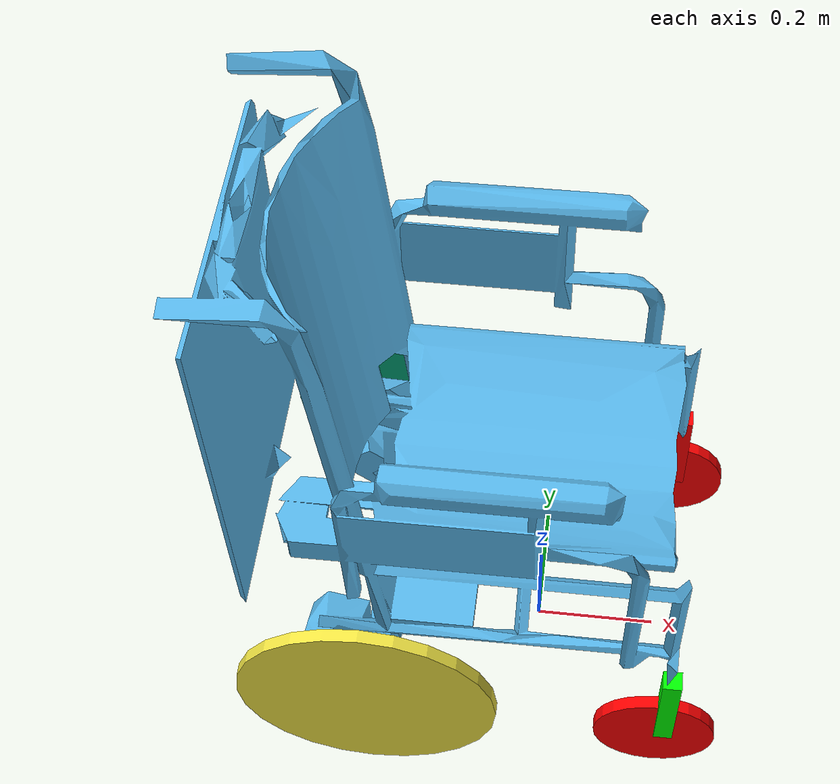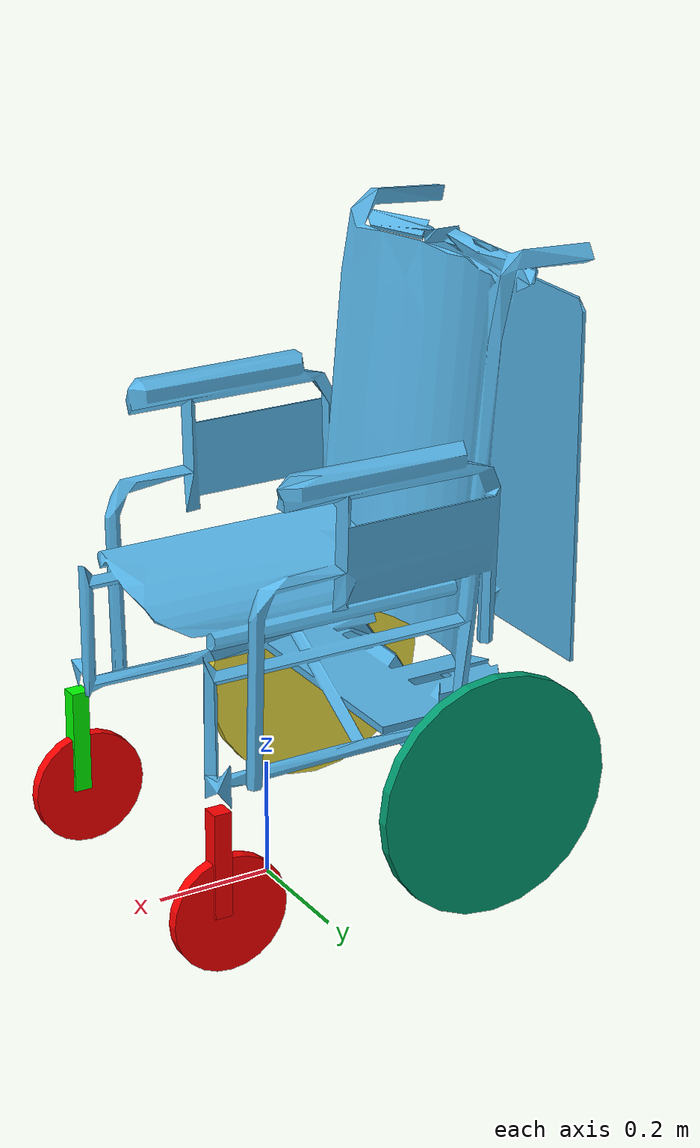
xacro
<?xml version="1.0"?>
<!--
	This is a differential drive robot badly
        modelled after the wheelchair

	Version 1.2a.
	-->

<robot name="$(arg name)" xmlns:xacro="http://www.ros.org/wiki/xacro">

  <!-- Define the robot -->
  <xacro:arg name="camera_tilt" default="0.0" />
  <xacro:property name="camera_tilt" value="$(arg camera_tilt)" />
  <xacro:arg name="show_video" default="true" />
  <xacro:property name="show_video" value="$(arg show_video)" />
  <xacro:arg name="robot_name" default="chair" />
  <xacro:property name="robot_name" value="$(arg name)" />
  <xacro:property name="robot_base_width" value="0.556" />
  <xacro:property name="robot_base_length" value="0.504" />
  <xacro:property name="robot_base_height" value="0.762" />
  <xacro:property name="robot_base_mass" value="4.5" />
  <xacro:property name="robot_wheel_zoffset" value="-0.457" />
  <xacro:property name="robot_wheel_xoffset" value="-0.252" />
  <xacro:property name="robot_wheel_radius" value="0.206" />
  <xacro:property name="robot_wheel_width" value="0.02" />
  <xacro:property name="robot_caster_link_height" value="0.179" />
  <xacro:property name="robot_caster_link_width" value="0.03" />
  <xacro:property name="robot_caster_link_length" value="0.03" />
  <xacro:property name="robot_caster_link_offset" value="-0.025" />
  <xacro:property name="robot_caster_joint_offset" value="${robot_base_length/2}" />
  <xacro:property name="robot_caster_wheel_radius" value="0.098" />
  <xacro:property name="robot_caster_wheel_width" value="0.02" />

  <!-- Import colors defined externally -->
  <xacro:include filename="$(find cpmr_ch11)/colors.xacro" />

  <!-- Define macros to make moments of inertia easier -->
  <xacro:macro name="I_cylinder" params="m r h">
    <inertial>
      <mass value="${m}" />
      <inertia  ixx="${m*(3*r*r+h*h)/12}" iyy="${m*(3*r*r+h*h)/12}" izz="${m*r*r/2}"
              ixy = "0" ixz = "0" iyz = "0" />
    </inertial>
  </xacro:macro>
  <xacro:macro name="I_cuboid" params="m x y z">
    <inertial>
      <mass value="${m}" />
      <inertia  ixx="${m*(y*y+z*z)/12}" iyy="${m*(x*x+z*z)/12}" izz="${m*(x*x+z*z)/12}"
                ixy = "0" ixz = "0" iyz = "0" />
    </inertial>
  </xacro:macro>

  <!-- robot footprint -->
  <link name="base_footprint">
  </link>

  <!-- Base -->
  <link name="base_link">
    <visual>
      <origin rpy="1.57 0 -1.57" xyz="-0.3 0.0 0.4" />
      <geometry>
        <mesh filename="$(find cpmr_ch11)/emptychair.obj" scale="0.001 0.001 0.001"/>
      </geometry>
    </visual>
    <collision>
      <geometry>
        <box size="${robot_base_length} ${robot_base_width} ${robot_base_height}" />
      </geometry>
    </collision>
    <xacro:I_cuboid m="8.4" x="${robot_base_length}" y="${robot_base_width}" z="${robot_base_height}" />
  </link>

  <joint name="base_joint" type="fixed">
    <origin xyz="0.0 0.0 ${robot_wheel_radius-robot_wheel_zoffset}" rpy="0.0 0.0 0.0" />
    <parent link="base_footprint" />
    <child link="base_link" />
    <axis xyz="0 0 1" />
  </joint>

  <!-- Left wheel -->
  <link name="left_wheel">
    <visual>
      <!-- origin rpy="0 1.5708 0" xyz="0 0 0" -->
      <geometry>
        <cylinder length="${robot_wheel_width}" radius="${robot_wheel_radius}" />
      </geometry>
    </visual>
    <collision>
      <geometry>
        <cylinder length="${robot_wheel_width}" radius="${robot_wheel_radius}" />
      </geometry>
    </collision>
    <xacro:I_cylinder m="0.1" r="${robot_wheel_radius}" h="${robot_wheel_width}" />
  </link>

  <joint name="left_wheel_joint" type="continuous">
    <axis xyz="0 0 1" />
    <parent link="base_link" />
    <child link="left_wheel" />
    <origin rpy="-1.5708 0 0" xyz="${robot_wheel_xoffset} ${robot_base_width/2+robot_wheel_width/2} ${robot_wheel_zoffset}" />
  </joint>

  <!-- Right wheel -->
  <link name="right_wheel">
    <visual>
      <!-- origin rpy="0 1.5708 0" xyz="0 0 0" -->
      <geometry>
        <cylinder length="${robot_wheel_width}" radius="${robot_wheel_radius}" />
      </geometry>
    </visual>
    <collision>
      <geometry>
        <cylinder length="${robot_wheel_width}" radius="${robot_wheel_radius}" />
      </geometry>
    </collision>
    <xacro:I_cylinder m="0.1" r="${robot_wheel_radius}" h="${robot_wheel_width}" />
  </link>

  <joint name="right_wheel_joint" type="continuous">
    <axis xyz="0 0 1" />
    <parent link="base_link" />
    <child link="right_wheel" />
    <origin rpy="-1.5708 0 0" xyz="${robot_wheel_xoffset} ${-robot_base_width/2-robot_wheel_width/2} ${robot_wheel_zoffset}" />
  </joint>

  <!-- Caster 'wheel' structure -->
  <gazebo reference="left_caster_link">
    <material>Gazebo/Red</material>
  </gazebo>

  <link name="left_caster_link">
    <visual>
      <origin xyz="${robot_caster_link_length/2} 0 0" rpy="0 0 0" />
      <geometry>
        <box size="${robot_caster_link_length} ${robot_caster_link_width} ${robot_caster_link_height}" />
      </geometry>
      <material name="red"/>
    </visual>
    <collision>
      <origin xyz="${robot_caster_link_length/2} 0 0" rpy="0 0 0" />
      <geometry>
        <box size="${robot_caster_link_length} ${robot_caster_link_width} ${robot_caster_link_height}" />
      </geometry>
    </collision>
    <xacro:I_cuboid m="0.1" x="${robot_caster_link_length}" y="${robot_caster_link_width}" z="${robot_caster_link_height}" />
  </link>

  <gazebo reference="right_caster_link">
    <material>Gazebo/Green</material>
  </gazebo>

  <link name="right_caster_link">
    <visual>
      <origin xyz="${robot_caster_link_length/2} 0 0" rpy="0 0 0" />
      <geometry>
        <box size="${robot_caster_link_length} ${robot_caster_link_width} ${robot_caster_link_height}" />
      </geometry>
      <material name="green"/>
    </visual>
    <collision>
      <origin xyz="${robot_caster_link_length/2} 0 0" rpy="0 0 0" />
      <geometry>
        <box size="${robot_caster_link_length} ${robot_caster_link_width} ${robot_caster_link_height}" />
      </geometry>
    </collision>
    <xacro:I_cuboid m="0.1" x="${robot_caster_link_length}" y="${robot_caster_link_width}" z="${robot_caster_link_height}" />
  </link>

  <joint name="left_caster_joint" type="continuous">
    <axis xyz="0 0 1" />
    <parent link="base_link" />
    <child link="left_caster_link" />
    <origin rpy="0 0 3.1415" xyz="${robot_caster_joint_offset-robot_caster_link_width/2} ${robot_base_width/2-robot_caster_link_length/2-0.015} ${-robot_base_height/2-robot_caster_link_height/2}" />
  </joint>

  <joint name="right_caster_joint" type="continuous">
    <axis xyz="0 0 1" />
    <parent link="base_link" />
    <child link="right_caster_link" />
    <origin rpy="0 0 3.1415" xyz="${robot_caster_joint_offset-robot_caster_link_width/2} ${-robot_base_width/2+robot_caster_link_length/2+0.015} ${-robot_base_height/2-robot_caster_link_height/2}" />
  </joint>

  <!-- caster wheel -->
  <gazebo reference="left_caster_wheel">
    <material>Gazebo/Red</material>
  </gazebo>
  <link name="left_caster_wheel">
    <visual>
      <geometry>
        <cylinder length="${robot_caster_wheel_width}" radius="${robot_caster_wheel_radius}" />
      </geometry>
      <material name="red" />
    </visual>
    <collision>
      <geometry>
        <cylinder length="${robot_caster_wheel_width}" radius="${robot_caster_wheel_radius}" />
      </geometry>
    </collision>
    <xacro:I_cylinder m="0.1" r="${robot_caster_wheel_width}" h="${robot_caster_link_height}" />
  </link>

  <gazebo reference="right_caster_wheel">
    <material>Gazebo/Green</material>
  </gazebo>
  <link name="right_caster_wheel">
    <visual>
      <geometry>
        <cylinder length="${robot_caster_wheel_width}" radius="${robot_caster_wheel_radius}" />
      </geometry>
      <material name="red" />
    </visual>
    <collision>
      <geometry>
        <cylinder length="${robot_caster_wheel_width}" radius="${robot_caster_wheel_radius}" />
      </geometry>
    </collision>
    <xacro:I_cylinder m="0.1" r="${robot_caster_wheel_width}" h="${robot_caster_link_height}" />
  </link>

  <joint name="left_caster_wheel_joint" type="continuous">
    <axis xyz="0 0 1" />
    <child link="left_caster_wheel" />
    <parent link="left_caster_link" />
    <origin rpy="1.5708 0 0" xyz="${robot_caster_link_length} 0 ${-robot_caster_link_height/2}" />
  </joint>

  <joint name="right_caster_wheel_joint" type="continuous">
    <axis xyz="0 0 1" />
    <child link="right_caster_wheel" />
    <parent link="right_caster_link" />
    <origin rpy="1.5708 0 0" xyz="${robot_caster_link_length} 0 ${-robot_caster_link_height/2}" />
  </joint>

  <gazebo>
    <plugin name="joint_state_publisher" filename="libgazebo_ros_joint_state_publisher.so">
      <ros>
        <namespace>/${robot_name}</namespace>
      </ros>
      <update_rate>100</update_rate>
      <joint_name>left_caster_wheel_joint</joint_name>
      <joint_name>right_caster_wheel_joint</joint_name>
      <joint_name>left_caster_joint</joint_name>
      <joint_name>right_caster_joint</joint_name>
      <joint_name>left_wheel_joint</joint_name>
      <joint_name>right_wheel_joint</joint_name>
    </plugin>
  </gazebo>

  <gazebo>
    <plugin name="differential_drive_controller" filename="libgazebo_ros_diff_drive.so">
      <ros>
        <namespace>/${robot_name}</namespace>
      </ros>
      <update_rate>20</update_rate>
      <left_joint>left_wheel_joint</left_joint>
      <right_joint>right_wheel_joint</right_joint>
      <robotBaseFrame>base_footprint</robotBaseFrame>
      <wheel_separation>${robot_base_width+robot_wheel_width}</wheel_separation>
      <wheel_diameter>${2*robot_wheel_radius}</wheel_diameter>
      <publish_odom>true</publish_odom>
      <publish_odom_tf>true</publish_odom_tf>
      <publish_wheel_tf>false</publish_wheel_tf>
      <odometry_frame>${robot_name}/odom</odometry_frame>
      <robot_base_frame>${robot_name}/base_footprint</robot_base_frame>
      <command_topic>cmd_vel</command_topic>
    </plugin>
  </gazebo>
</robot>

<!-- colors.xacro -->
<robot>
  <material name="red">
    <color rgba="1 0 0 1"/>
  </material>
  <material name="green">
    <color rgba="0 1 0 1"/>
  </material>
  <material name="blue">
    <color rgba="0 0 1 1"/>
  </material>
  <material name="black">
    <color rgba="0 0 0 1"/>
  </material>
  <material name="silver">
    <color rgba="0.8 0.8 0.8 1"/>
  </material>
  <material name="grey">
    <color rgba="0.5 0.5 0.5 1"/>
  </material>
</robot>
